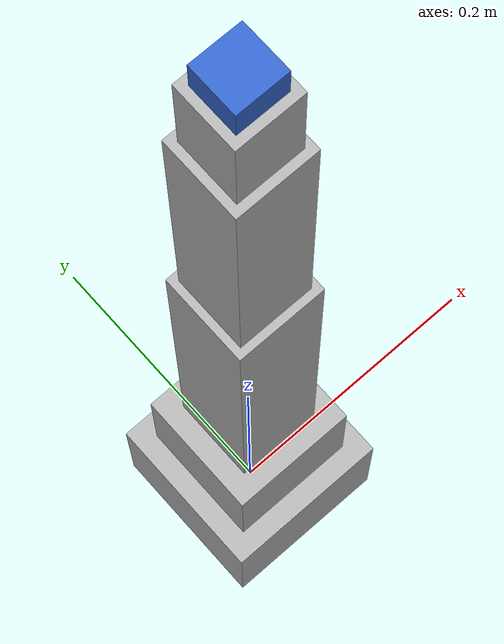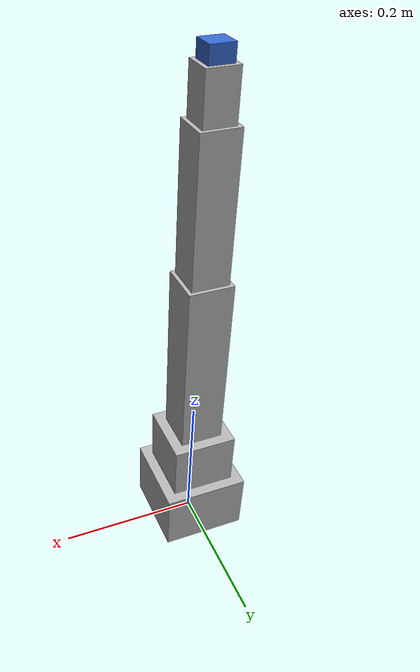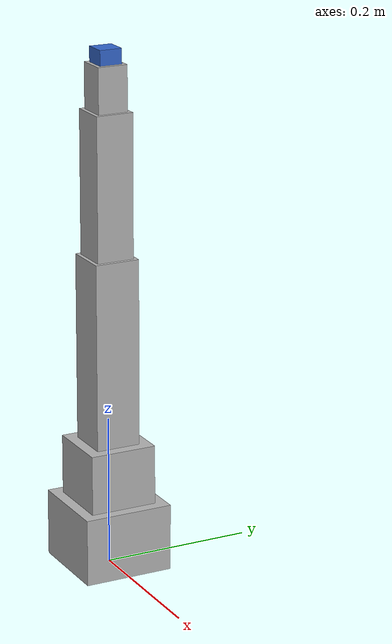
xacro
<?xml version="1.0" ?>
<robot name="arm" xmlns:xacro="http://www.ros.org/wiki/xacro">

  <!-- Include Materials, ROS2 Control Transmissions, and Gazebo Plugins -->
  <xacro:include filename="$(find arm_description)/urdf/materials.xacro" />
  <xacro:include filename="$(find arm_description)/urdf/ros2_control.xacro" />
  <xacro:include filename="$(find arm_description)/urdf/gazebo.xacro" />

  <!-- Base Link -->
  <link name="base_link">
    <inertial>
      <origin xyz="0.0 0.0 0.045" rpy="0 0 0"/>
      <mass value="1.500"/>
      <inertia ixx="0.0035" ixy="0.0" ixz="0.0" iyy="0.0035" iyz="0.0" izz="0.0050"/>
    </inertial>
    <visual>
      <origin xyz="0 0 0" rpy="0 0 0"/>
      <geometry>
        <mesh filename="file://$(find arm_description)/meshes/base_link.stl" scale="0.001 0.001 0.001"/>
      </geometry>
      <material name="silver"/>
    </visual>
    <collision>
      <origin xyz="0 0 0" rpy="0 0 0"/>
      <geometry>
        <mesh filename="file://$(find arm_description)/meshes/base_link.stl" scale="0.001 0.001 0.001"/>
      </geometry>
    </collision>
  </link>

  <!-- Joint 1 (Base Rotation - Yaw around Z) -->
  <joint name="joint_1" type="revolute">
    <origin xyz="0.0 0.0 0.09" rpy="0 0 0"/>
    <parent link="base_link"/>
    <child link="2nd_link_1"/>
    <axis xyz="0.0 0.0 1.0"/>
    <limit lower="-3.14159" upper="3.14159" effort="100.0" velocity="3.14"/>
    <dynamics damping="0.7" friction="0.5"/>
  </joint>

  <!-- Link 2 (Shoulder Turret) -->
  <link name="2nd_link_1">
    <inertial>
      <origin xyz="0.0 0.0 0.04" rpy="0 0 0"/>
      <mass value="1.200"/>
      <inertia ixx="0.0025" ixy="0.0" ixz="0.0" iyy="0.0025" iyz="0.0" izz="0.0020"/>
    </inertial>
    <visual>
      <origin xyz="0 0 0" rpy="0 0 0"/>
      <geometry>
        <mesh filename="file://$(find arm_description)/meshes/2nd_link_1.stl" scale="0.001 0.001 0.001"/>
      </geometry>
      <material name="silver"/>
    </visual>
    <collision>
      <origin xyz="0 0 0" rpy="0 0 0"/>
      <geometry>
        <mesh filename="file://$(find arm_description)/meshes/2nd_link_1.stl" scale="0.001 0.001 0.001"/>
      </geometry>
    </collision>
  </link>

  <!-- Joint 2 (Shoulder Pitch around Y) -->
  <joint name="joint_2" type="revolute">
    <origin xyz="0.0 0.0 0.08" rpy="0 0 0"/>
    <parent link="2nd_link_1"/>
    <child link="3rd_link_1"/>
    <axis xyz="0.0 1.0 0.0"/>
    <limit lower="-1.5708" upper="1.5708" effort="150.0" velocity="2.50"/>
    <dynamics damping="0.7" friction="0.5"/>
  </joint>

  <!-- Link 3 (Upper Arm - Shoulder to Elbow, a1 = 25 cm) -->
  <link name="3rd_link_1">
    <inertial>
      <origin xyz="0.0 0.0 0.125" rpy="0 0 0"/>
      <mass value="0.950"/>
      <inertia ixx="0.0050" ixy="0.0" ixz="0.0" iyy="0.0050" iyz="0.0" izz="0.0010"/>
    </inertial>
    <visual>
      <origin xyz="0 0 0" rpy="0 0 0"/>
      <geometry>
        <mesh filename="file://$(find arm_description)/meshes/3rd_link_1.stl" scale="0.001 0.001 0.001"/>
      </geometry>
      <material name="silver"/>
    </visual>
    <collision>
      <origin xyz="0 0 0" rpy="0 0 0"/>
      <geometry>
        <mesh filename="file://$(find arm_description)/meshes/3rd_link_1.stl" scale="0.001 0.001 0.001"/>
      </geometry>
    </collision>
  </link>

  <!-- Joint 3 (Elbow Pitch around Y) -->
  <joint name="joint_3" type="revolute">
    <origin xyz="0.0 0.0 0.25" rpy="0 0 0"/>
    <parent link="3rd_link_1"/>
    <child link="4th_link_1"/>
    <axis xyz="0.0 1.0 0.0"/>
    <limit lower="-1.5708" upper="1.5708" effort="100.0" velocity="2.50"/>
    <dynamics damping="0.7" friction="0.5"/>
  </joint>

  <!-- Link 4 (Forearm - Elbow to Wrist, a2 = 19 cm) -->
  <link name="4th_link_1">
    <inertial>
      <origin xyz="0.0 0.0 0.095" rpy="0 0 0"/>
      <mass value="0.650"/>
      <inertia ixx="0.0020" ixy="0.0" ixz="0.0" iyy="0.0020" iyz="0.0" izz="0.0006"/>
    </inertial>
    <visual>
      <origin xyz="0 0 0" rpy="0 0 0"/>
      <geometry>
        <mesh filename="file://$(find arm_description)/meshes/4th_link_1.stl" scale="0.001 0.001 0.001"/>
      </geometry>
      <material name="silver"/>
    </visual>
    <collision>
      <origin xyz="0 0 0" rpy="0 0 0"/>
      <geometry>
        <mesh filename="file://$(find arm_description)/meshes/4th_link_1.stl" scale="0.001 0.001 0.001"/>
      </geometry>
    </collision>
  </link>

  <!-- Joint 4 (Wrist Pitch around Y) -->
  <joint name="joint_4" type="revolute">
    <origin xyz="0.0 0.0 0.19" rpy="0 0 0"/>
    <parent link="4th_link_1"/>
    <child link="5th_link_1"/>
    <axis xyz="0.0 1.0 0.0"/>
    <limit lower="-1.5708" upper="1.5708" effort="50.0" velocity="3.14"/>
    <dynamics damping="0.5" friction="0.3"/>
  </joint>

  <!-- Link 5 (Wrist / Tool Flange, a3 = 6 cm) -->
  <link name="5th_link_1">
    <inertial>
      <origin xyz="0.0 0.0 0.03" rpy="0 0 0"/>
      <mass value="0.300"/>
      <inertia ixx="0.0005" ixy="0.0" ixz="0.0" iyy="0.0005" iyz="0.0" izz="0.0003"/>
    </inertial>
    <visual>
      <origin xyz="0 0 0" rpy="0 0 0"/>
      <geometry>
        <mesh filename="file://$(find arm_description)/meshes/5th_link_1.stl" scale="0.001 0.001 0.001"/>
      </geometry>
      <material name="silver"/>
    </visual>
    <collision>
      <origin xyz="0 0 0" rpy="0 0 0"/>
      <geometry>
        <mesh filename="file://$(find arm_description)/meshes/5th_link_1.stl" scale="0.001 0.001 0.001"/>
      </geometry>
    </collision>
  </link>

  <!-- Joint 5 (Wrist Roll / Gripper Mount around Z) -->
  <joint name="joint_5" type="revolute">
    <origin xyz="0.0 0.0 0.06" rpy="0 0 0"/>
    <parent link="5th_link_1"/>
    <child link="end_effector_link"/>
    <axis xyz="0.0 0.0 1.0"/>
    <limit lower="-3.14159" upper="3.14159" effort="30.0" velocity="3.14"/>
    <dynamics damping="0.5" friction="0.3"/>
  </joint>

  <!-- End Effector Link (Tool Center Point) -->
  <link name="end_effector_link">
    <inertial>
      <origin xyz="0 0 0.01" rpy="0 0 0"/>
      <mass value="0.100"/>
      <inertia ixx="0.0001" ixy="0.0" ixz="0.0" iyy="0.0001" iyz="0.0" izz="0.0001"/>
    </inertial>
    <visual>
      <origin xyz="0 0 0.01" rpy="0 0 0"/>
      <geometry>
        <box size="0.03 0.03 0.02"/>
      </geometry>
      <material name="blue"/>
    </visual>
    <collision>
      <origin xyz="0 0 0.01" rpy="0 0 0"/>
      <geometry>
        <box size="0.03 0.03 0.02"/>
      </geometry>
    </collision>
  </link>

</robot>

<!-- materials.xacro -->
<robot name="ASSY_materials" xmlns:xacro="http://www.ros.org/wiki/xacro">

  <material name="silver">
    <color rgba="0.700 0.700 0.700 1.000"/>
  </material>

  <material name="black">
    <color rgba="0.100 0.100 0.100 1.000"/>
  </material>

  <material name="blue">
    <color rgba="0.200 0.400 0.800 1.000"/>
  </material>

  <material name="orange">
    <color rgba="1.000 0.400 0.000 1.000"/>
  </material>

  <material name="white">
    <color rgba="1.000 1.000 1.000 1.000"/>
  </material>

  <material name="dark_grey">
    <color rgba="0.300 0.300 0.300 1.000"/>
  </material>

</robot>
